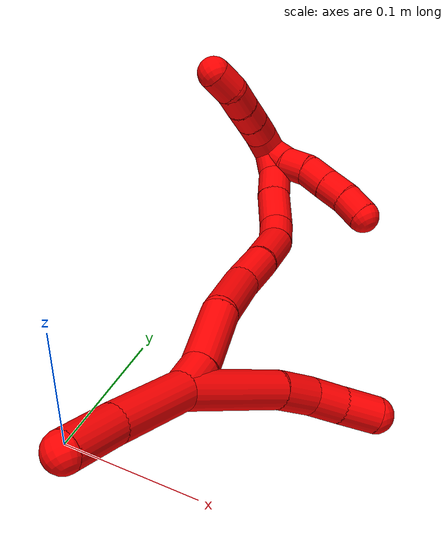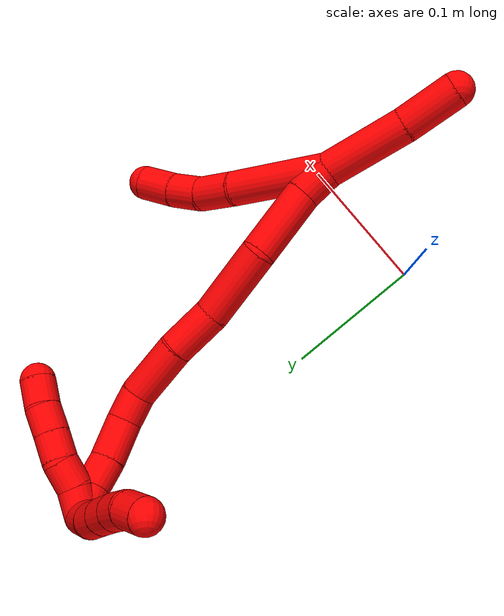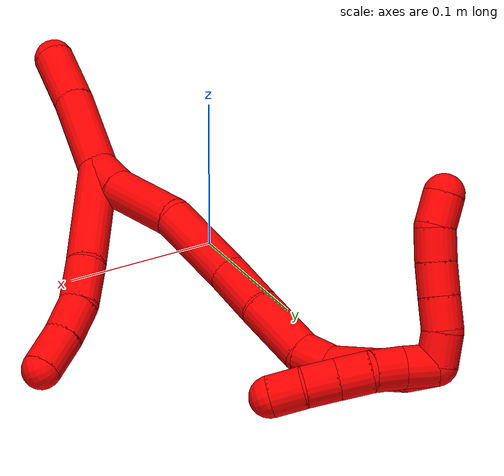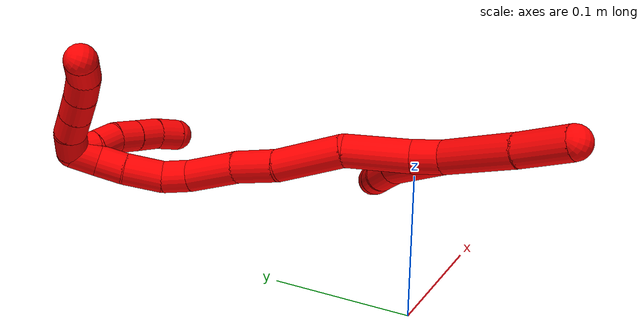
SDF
<sdf version="1.7">
 <world name="default">
  <model name="2">
   <static>0</static>
   <link name="2">
    <collision name="collision-cylinder-e_1_2_8">
     <pose>0.028579 0.020404 -0.007538 -1.92469 0.920203 -1.23668</pose>
     <geometry><cylinder><radius>0.0125</radius><length>0.07183</length></cylinder></geometry>
     <surface>
      <friction><ode><mu>1.16</mu><mu2>1.16</mu2><slip1>0</slip1><slip2>0</slip2></ode></friction>
      <contact><ode><kp>1e+06</kp><kd>1</kd><max_vel>0</max_vel><min_depth>0.001</min_depth></ode></contact>
     </surface>
    </collision>
    <visual name="visual-cylinder-e_1_2_8">
     <pose>0.028579 0.020404 -0.007538 -1.92469 0.920203 -1.23668</pose>
     <geometry><cylinder><radius>0.0125</radius><length>0.07183</length></cylinder></geometry>
     <material><ambient>1 0 0 1</ambient></material>
    </visual>
    <collision name="collision-cylinder-e_2_8_9">
     <pose>0.067063 0.049571 -0.019511 -2.0393 0.789745 -1.19163</pose>
     <geometry><cylinder><radius>0.0125</radius><length>0.027898</length></cylinder></geometry>
     <surface>
      <friction><ode><mu>1.16</mu><mu2>1.16</mu2><slip1>0</slip1><slip2>0</slip2></ode></friction>
      <contact><ode><kp>1e+06</kp><kd>1</kd><max_vel>0</max_vel><min_depth>0.001</min_depth></ode></contact>
     </surface>
    </collision>
    <visual name="visual-cylinder-e_2_8_9">
     <pose>0.067063 0.049571 -0.019511 -2.0393 0.789745 -1.19163</pose>
     <geometry><cylinder><radius>0.0125</radius><length>0.027898</length></cylinder></geometry>
     <material><ambient>1 0 0 1</ambient></material>
    </visual>
    <collision name="collision-cylinder-e_3_9_10">
     <pose>0.085729 0.06385 -0.029897 -2.39412 0.823559 -1.67826</pose>
     <geometry><cylinder><radius>0.0125</radius><length>0.023882</length></cylinder></geometry>
     <surface>
      <friction><ode><mu>1.16</mu><mu2>1.16</mu2><slip1>0</slip1><slip2>0</slip2></ode></friction>
      <contact><ode><kp>1e+06</kp><kd>1</kd><max_vel>0</max_vel><min_depth>0.001</min_depth></ode></contact>
     </surface>
    </collision>
    <visual name="visual-cylinder-e_3_9_10">
     <pose>0.085729 0.06385 -0.029897 -2.39412 0.823559 -1.67826</pose>
     <geometry><cylinder><radius>0.0125</radius><length>0.023882</length></cylinder></geometry>
     <material><ambient>1 0 0 1</ambient></material>
    </visual>
    <collision name="collision-cylinder-e_4_10_6">
     <pose>0.104514 0.074092 -0.04301 -2.5583 0.862954 -1.98597</pose>
     <geometry><cylinder><radius>0.0125</radius><length>0.026389</length></cylinder></geometry>
     <surface>
      <friction><ode><mu>1.16</mu><mu2>1.16</mu2><slip1>0</slip1><slip2>0</slip2></ode></friction>
      <contact><ode><kp>1e+06</kp><kd>1</kd><max_vel>0</max_vel><min_depth>0.001</min_depth></ode></contact>
     </surface>
    </collision>
    <visual name="visual-cylinder-e_4_10_6">
     <pose>0.104514 0.074092 -0.04301 -2.5583 0.862954 -1.98597</pose>
     <geometry><cylinder><radius>0.0125</radius><length>0.026389</length></cylinder></geometry>
     <material><ambient>1 0 0 1</ambient></material>
    </visual>
    <collision name="collision-cylinder-e_1_2_11">
     <pose>-0.022713 -0.01866 -0.005067 1.83596 -0.865538 -1.08695</pose>
     <geometry><cylinder><radius>0.0125</radius><length>0.059657</length></cylinder></geometry>
     <surface>
      <friction><ode><mu>1.16</mu><mu2>1.16</mu2><slip1>0</slip1><slip2>0</slip2></ode></friction>
      <contact><ode><kp>1e+06</kp><kd>1</kd><max_vel>0</max_vel><min_depth>0.001</min_depth></ode></contact>
     </surface>
    </collision>
    <visual name="visual-cylinder-e_1_2_11">
     <pose>-0.022713 -0.01866 -0.005067 1.83596 -0.865538 -1.08695</pose>
     <geometry><cylinder><radius>0.0125</radius><length>0.059657</length></cylinder></geometry>
     <material><ambient>1 0 0 1</ambient></material>
    </visual>
    <collision name="collision-cylinder-e_2_11_5">
     <pose>-0.059827 -0.050758 -0.014483 1.88378 -0.795124 -1.04706</pose>
     <geometry><cylinder><radius>0.0125</radius><length>0.040343</length></cylinder></geometry>
     <surface>
      <friction><ode><mu>1.16</mu><mu2>1.16</mu2><slip1>0</slip1><slip2>0</slip2></ode></friction>
      <contact><ode><kp>1e+06</kp><kd>1</kd><max_vel>0</max_vel><min_depth>0.001</min_depth></ode></contact>
     </surface>
    </collision>
    <visual name="visual-cylinder-e_2_11_5">
     <pose>-0.059827 -0.050758 -0.014483 1.88378 -0.795124 -1.04706</pose>
     <geometry><cylinder><radius>0.0125</radius><length>0.040343</length></cylinder></geometry>
     <material><ambient>1 0 0 1</ambient></material>
    </visual>
    <collision name="collision-cylinder-e_1_2_12">
     <pose>0.007996 0.006632 0.005694 -0.861333 0.740938 -0.353169</pose>
     <geometry><cylinder><radius>0.0125</radius><length>0.023693</length></cylinder></geometry>
     <surface>
      <friction><ode><mu>1.16</mu><mu2>1.16</mu2><slip1>0</slip1><slip2>0</slip2></ode></friction>
      <contact><ode><kp>1e+06</kp><kd>1</kd><max_vel>0</max_vel><min_depth>0.001</min_depth></ode></contact>
     </surface>
    </collision>
    <visual name="visual-cylinder-e_1_2_12">
     <pose>0.007996 0.006632 0.005694 -0.861333 0.740938 -0.353169</pose>
     <geometry><cylinder><radius>0.0125</radius><length>0.023693</length></cylinder></geometry>
     <material><ambient>1 0 0 1</ambient></material>
    </visual>
    <collision name="collision-cylinder-e_2_12_13">
     <pose>0.030624 0.0253 0.027964 -0.628043 0.620237 -0.207402</pose>
     <geometry><cylinder><radius>0.0125</radius><length>0.050346</length></cylinder></geometry>
     <surface>
      <friction><ode><mu>1.16</mu><mu2>1.16</mu2><slip1>0</slip1><slip2>0</slip2></ode></friction>
      <contact><ode><kp>1e+06</kp><kd>1</kd><max_vel>0</max_vel><min_depth>0.001</min_depth></ode></contact>
     </surface>
    </collision>
    <visual name="visual-cylinder-e_2_12_13">
     <pose>0.030624 0.0253 0.027964 -0.628043 0.620237 -0.207402</pose>
     <geometry><cylinder><radius>0.0125</radius><length>0.050346</length></cylinder></geometry>
     <material><ambient>1 0 0 1</ambient></material>
    </visual>
    <collision name="collision-cylinder-e_3_13_14">
     <pose>0.059147 0.056963 0.056874 -1.00974 0.539874 -0.303473</pose>
     <geometry><cylinder><radius>0.0125</radius><length>0.054052</length></cylinder></geometry>
     <surface>
      <friction><ode><mu>1.16</mu><mu2>1.16</mu2><slip1>0</slip1><slip2>0</slip2></ode></friction>
      <contact><ode><kp>1e+06</kp><kd>1</kd><max_vel>0</max_vel><min_depth>0.001</min_depth></ode></contact>
     </surface>
    </collision>
    <visual name="visual-cylinder-e_3_13_14">
     <pose>0.059147 0.056963 0.056874 -1.00974 0.539874 -0.303473</pose>
     <geometry><cylinder><radius>0.0125</radius><length>0.054052</length></cylinder></geometry>
     <material><ambient>1 0 0 1</ambient></material>
    </visual>
    <collision name="collision-cylinder-e_4_14_15">
     <pose>0.084625 0.087228 0.076926 -0.943092 0.722558 -0.38069</pose>
     <geometry><cylinder><radius>0.0125</radius><length>0.035038</length></cylinder></geometry>
     <surface>
      <friction><ode><mu>1.16</mu><mu2>1.16</mu2><slip1>0</slip1><slip2>0</slip2></ode></friction>
      <contact><ode><kp>1e+06</kp><kd>1</kd><max_vel>0</max_vel><min_depth>0.001</min_depth></ode></contact>
     </surface>
    </collision>
    <visual name="visual-cylinder-e_4_14_15">
     <pose>0.084625 0.087228 0.076926 -0.943092 0.722558 -0.38069</pose>
     <geometry><cylinder><radius>0.0125</radius><length>0.035038</length></cylinder></geometry>
     <material><ambient>1 0 0 1</ambient></material>
    </visual>
    <collision name="collision-cylinder-e_5_15_16">
     <pose>0.107904 0.112598 0.094088 -1.00078 0.589049 -0.328753</pose>
     <geometry><cylinder><radius>0.0125</radius><length>0.042096</length></cylinder></geometry>
     <surface>
      <friction><ode><mu>1.16</mu><mu2>1.16</mu2><slip1>0</slip1><slip2>0</slip2></ode></friction>
      <contact><ode><kp>1e+06</kp><kd>1</kd><max_vel>0</max_vel><min_depth>0.001</min_depth></ode></contact>
     </surface>
    </collision>
    <visual name="visual-cylinder-e_5_15_16">
     <pose>0.107904 0.112598 0.094088 -1.00078 0.589049 -0.328753</pose>
     <geometry><cylinder><radius>0.0125</radius><length>0.042096</length></cylinder></geometry>
     <material><ambient>1 0 0 1</ambient></material>
    </visual>
    <collision name="collision-cylinder-e_6_16_17">
     <pose>0.124157 0.133412 0.11122 -0.669144 0.435435 -0.153511</pose>
     <geometry><cylinder><radius>0.0125</radius><length>0.021621</length></cylinder></geometry>
     <surface>
      <friction><ode><mu>1.16</mu><mu2>1.16</mu2><slip1>0</slip1><slip2>0</slip2></ode></friction>
      <contact><ode><kp>1e+06</kp><kd>1</kd><max_vel>0</max_vel><min_depth>0.001</min_depth></ode></contact>
     </surface>
    </collision>
    <visual name="visual-cylinder-e_6_16_17">
     <pose>0.124157 0.133412 0.11122 -0.669144 0.435435 -0.153511</pose>
     <geometry><cylinder><radius>0.0125</radius><length>0.021621</length></cylinder></geometry>
     <material><ambient>1 0 0 1</ambient></material>
    </visual>
    <collision name="collision-cylinder-e_7_17_18">
     <pose>0.134511 0.143679 0.132379 -0.301328 0.389688 -0.059902</pose>
     <geometry><cylinder><radius>0.0125</radius><length>0.030499</length></cylinder></geometry>
     <surface>
      <friction><ode><mu>1.16</mu><mu2>1.16</mu2><slip1>0</slip1><slip2>0</slip2></ode></friction>
      <contact><ode><kp>1e+06</kp><kd>1</kd><max_vel>0</max_vel><min_depth>0.001</min_depth></ode></contact>
     </surface>
    </collision>
    <visual name="visual-cylinder-e_7_17_18">
     <pose>0.134511 0.143679 0.132379 -0.301328 0.389688 -0.059902</pose>
     <geometry><cylinder><radius>0.0125</radius><length>0.030499</length></cylinder></geometry>
     <material><ambient>1 0 0 1</ambient></material>
    </visual>
    <collision name="collision-cylinder-e_8_18_19">
     <pose>0.145523 0.150186 0.155131 -0.24501 0.499452 -0.062784</pose>
     <geometry><cylinder><radius>0.0125</radius><length>0.021795</length></cylinder></geometry>
     <surface>
      <friction><ode><mu>1.16</mu><mu2>1.16</mu2><slip1>0</slip1><slip2>0</slip2></ode></friction>
      <contact><ode><kp>1e+06</kp><kd>1</kd><max_vel>0</max_vel><min_depth>0.001</min_depth></ode></contact>
     </surface>
    </collision>
    <visual name="visual-cylinder-e_8_18_19">
     <pose>0.145523 0.150186 0.155131 -0.24501 0.499452 -0.062784</pose>
     <geometry><cylinder><radius>0.0125</radius><length>0.021795</length></cylinder></geometry>
     <material><ambient>1 0 0 1</ambient></material>
    </visual>
    <collision name="collision-cylinder-e_9_19_1">
     <pose>0.153586 0.153452 0.174401 -0.094417 0.276106 -0.013128</pose>
     <geometry><cylinder><radius>0.0125</radius><length>0.020859</length></cylinder></geometry>
     <surface>
      <friction><ode><mu>1.16</mu><mu2>1.16</mu2><slip1>0</slip1><slip2>0</slip2></ode></friction>
      <contact><ode><kp>1e+06</kp><kd>1</kd><max_vel>0</max_vel><min_depth>0.001</min_depth></ode></contact>
     </surface>
    </collision>
    <visual name="visual-cylinder-e_9_19_1">
     <pose>0.153586 0.153452 0.174401 -0.094417 0.276106 -0.013128</pose>
     <geometry><cylinder><radius>0.0125</radius><length>0.020859</length></cylinder></geometry>
     <material><ambient>1 0 0 1</ambient></material>
    </visual>
    <collision name="collision-cylinder-e_1_1_20">
     <pose>0.154113 0.146201 0.189629 1.00214 -0.233778 -0.128447</pose>
     <geometry><cylinder><radius>0.0125</radius><length>0.02</length></cylinder></geometry>
     <surface>
      <friction><ode><mu>1.16</mu><mu2>1.16</mu2><slip1>0</slip1><slip2>0</slip2></ode></friction>
      <contact><ode><kp>1e+06</kp><kd>1</kd><max_vel>0</max_vel><min_depth>0.001</min_depth></ode></contact>
     </surface>
    </collision>
    <visual name="visual-cylinder-e_1_1_20">
     <pose>0.154113 0.146201 0.189629 1.00214 -0.233778 -0.128447</pose>
     <geometry><cylinder><radius>0.0125</radius><length>0.02</length></cylinder></geometry>
     <material><ambient>1 0 0 1</ambient></material>
    </visual>
    <collision name="collision-cylinder-e_2_20_21">
     <pose>0.148747 0.128842 0.197467 1.29444 -0.309833 -0.234986</pose>
     <geometry><cylinder><radius>0.0125</radius><length>0.02</length></cylinder></geometry>
     <surface>
      <friction><ode><mu>1.16</mu><mu2>1.16</mu2><slip1>0</slip1><slip2>0</slip2></ode></friction>
      <contact><ode><kp>1e+06</kp><kd>1</kd><max_vel>0</max_vel><min_depth>0.001</min_depth></ode></contact>
     </surface>
    </collision>
    <visual name="visual-cylinder-e_2_20_21">
     <pose>0.148747 0.128842 0.197467 1.29444 -0.309833 -0.234986</pose>
     <geometry><cylinder><radius>0.0125</radius><length>0.02</length></cylinder></geometry>
     <material><ambient>1 0 0 1</ambient></material>
    </visual>
    <collision name="collision-cylinder-e_3_21_22">
     <pose>0.142553 0.110586 0.20279 1.2797 -0.319953 -0.239052</pose>
     <geometry><cylinder><radius>0.0125</radius><length>0.02</length></cylinder></geometry>
     <surface>
      <friction><ode><mu>1.16</mu><mu2>1.16</mu2><slip1>0</slip1><slip2>0</slip2></ode></friction>
      <contact><ode><kp>1e+06</kp><kd>1</kd><max_vel>0</max_vel><min_depth>0.001</min_depth></ode></contact>
     </surface>
    </collision>
    <visual name="visual-cylinder-e_3_21_22">
     <pose>0.142553 0.110586 0.20279 1.2797 -0.319953 -0.239052</pose>
     <geometry><cylinder><radius>0.0125</radius><length>0.02</length></cylinder></geometry>
     <material><ambient>1 0 0 1</ambient></material>
    </visual>
    <collision name="collision-cylinder-e_4_22_23">
     <pose>0.136412 0.09255 0.208836 1.21509 -0.304271 -0.212396</pose>
     <geometry><cylinder><radius>0.0125</radius><length>0.02</length></cylinder></geometry>
     <surface>
      <friction><ode><mu>1.16</mu><mu2>1.16</mu2><slip1>0</slip1><slip2>0</slip2></ode></friction>
      <contact><ode><kp>1e+06</kp><kd>1</kd><max_vel>0</max_vel><min_depth>0.001</min_depth></ode></contact>
     </surface>
    </collision>
    <visual name="visual-cylinder-e_4_22_23">
     <pose>0.136412 0.09255 0.208836 1.21509 -0.304271 -0.212396</pose>
     <geometry><cylinder><radius>0.0125</radius><length>0.02</length></cylinder></geometry>
     <material><ambient>1 0 0 1</ambient></material>
    </visual>
    <collision name="collision-cylinder-e_5_23_4">
     <pose>0.128873 0.076568 0.217621 0.91079 -0.47151 -0.23421</pose>
     <geometry><cylinder><radius>0.0125</radius><length>0.02</length></cylinder></geometry>
     <surface>
      <friction><ode><mu>1.16</mu><mu2>1.16</mu2><slip1>0</slip1><slip2>0</slip2></ode></friction>
      <contact><ode><kp>1e+06</kp><kd>1</kd><max_vel>0</max_vel><min_depth>0.001</min_depth></ode></contact>
     </surface>
    </collision>
    <visual name="visual-cylinder-e_5_23_4">
     <pose>0.128873 0.076568 0.217621 0.91079 -0.47151 -0.23421</pose>
     <geometry><cylinder><radius>0.0125</radius><length>0.02</length></cylinder></geometry>
     <material><ambient>1 0 0 1</ambient></material>
    </visual>
    <collision name="collision-cylinder-e_1_1_24">
     <pose>0.159372 0.150608 0.175618 2.73377 0.298726 1.25818</pose>
     <geometry><cylinder><radius>0.0125</radius><length>0.02</length></cylinder></geometry>
     <surface>
      <friction><ode><mu>1.16</mu><mu2>1.16</mu2><slip1>0</slip1><slip2>0</slip2></ode></friction>
      <contact><ode><kp>1e+06</kp><kd>1</kd><max_vel>0</max_vel><min_depth>0.001</min_depth></ode></contact>
     </surface>
    </collision>
    <visual name="visual-cylinder-e_1_1_24">
     <pose>0.159372 0.150608 0.175618 2.73377 0.298726 1.25818</pose>
     <geometry><cylinder><radius>0.0125</radius><length>0.02</length></cylinder></geometry>
     <material><ambient>1 0 0 1</ambient></material>
    </visual>
    <collision name="collision-cylinder-e_2_24_25">
     <pose>0.167421 0.143162 0.159062 2.70246 0.535878 1.77651</pose>
     <geometry><cylinder><radius>0.0125</radius><length>0.02</length></cylinder></geometry>
     <surface>
      <friction><ode><mu>1.16</mu><mu2>1.16</mu2><slip1>0</slip1><slip2>0</slip2></ode></friction>
      <contact><ode><kp>1e+06</kp><kd>1</kd><max_vel>0</max_vel><min_depth>0.001</min_depth></ode></contact>
     </surface>
    </collision>
    <visual name="visual-cylinder-e_2_24_25">
     <pose>0.167421 0.143162 0.159062 2.70246 0.535878 1.77651</pose>
     <geometry><cylinder><radius>0.0125</radius><length>0.02</length></cylinder></geometry>
     <material><ambient>1 0 0 1</ambient></material>
    </visual>
    <collision name="collision-cylinder-e_3_25_26">
     <pose>0.175607 0.13721 0.142047 2.89786 0.313082 1.82176</pose>
     <geometry><cylinder><radius>0.0125</radius><length>0.02</length></cylinder></geometry>
     <surface>
      <friction><ode><mu>1.16</mu><mu2>1.16</mu2><slip1>0</slip1><slip2>0</slip2></ode></friction>
      <contact><ode><kp>1e+06</kp><kd>1</kd><max_vel>0</max_vel><min_depth>0.001</min_depth></ode></contact>
     </surface>
    </collision>
    <visual name="visual-cylinder-e_3_25_26">
     <pose>0.175607 0.13721 0.142047 2.89786 0.313082 1.82176</pose>
     <geometry><cylinder><radius>0.0125</radius><length>0.02</length></cylinder></geometry>
     <material><ambient>1 0 0 1</ambient></material>
    </visual>
    <collision name="collision-cylinder-e_4_26_27">
     <pose>0.181988 0.132622 0.123657 2.89634 0.336429 1.88601</pose>
     <geometry><cylinder><radius>0.0125</radius><length>0.02</length></cylinder></geometry>
     <surface>
      <friction><ode><mu>1.16</mu><mu2>1.16</mu2><slip1>0</slip1><slip2>0</slip2></ode></friction>
      <contact><ode><kp>1e+06</kp><kd>1</kd><max_vel>0</max_vel><min_depth>0.001</min_depth></ode></contact>
     </surface>
    </collision>
    <visual name="visual-cylinder-e_4_26_27">
     <pose>0.181988 0.132622 0.123657 2.89634 0.336429 1.88601</pose>
     <geometry><cylinder><radius>0.0125</radius><length>0.02</length></cylinder></geometry>
     <material><ambient>1 0 0 1</ambient></material>
    </visual>
    <collision name="collision-cylinder-e_5_27_3">
     <pose>0.187225 0.128755 0.104817 2.98033 0.194805 1.75962</pose>
     <geometry><cylinder><radius>0.0125</radius><length>0.02</length></cylinder></geometry>
     <surface>
      <friction><ode><mu>1.16</mu><mu2>1.16</mu2><slip1>0</slip1><slip2>0</slip2></ode></friction>
      <contact><ode><kp>1e+06</kp><kd>1</kd><max_vel>0</max_vel><min_depth>0.001</min_depth></ode></contact>
     </surface>
    </collision>
    <visual name="visual-cylinder-e_5_27_3">
     <pose>0.187225 0.128755 0.104817 2.98033 0.194805 1.75962</pose>
     <geometry><cylinder><radius>0.0125</radius><length>0.02</length></cylinder></geometry>
     <material><ambient>1 0 0 1</ambient></material>
    </visual>
    <collision name="collision-sphere-3">
     <pose>0.189161 0.12718 0.095133 0 -0 0</pose>
     <geometry><sphere><radius>0.0125</radius></sphere></geometry>
     <surface>
      <friction><ode><mu>1.16</mu><mu2>1.16</mu2><slip1>0</slip1><slip2>0</slip2></ode></friction>
      <contact><ode><kp>1e+06</kp><kd>1</kd><max_vel>0</max_vel><min_depth>0.001</min_depth></ode></contact>
     </surface>
    </collision>
    <visual name="visual-sphere-3">
     <pose>0.189161 0.12718 0.095133 0 -0 0</pose>
     <geometry><sphere><radius>0.0125</radius></sphere></geometry>
     <material><ambient>1 0 0 1</ambient></material>
    </visual>
    <collision name="collision-sphere-27">
     <pose>0.185289 0.13033 0.1145 0 -0 0</pose>
     <geometry><sphere><radius>0.0125</radius></sphere></geometry>
     <surface>
      <friction><ode><mu>1.16</mu><mu2>1.16</mu2><slip1>0</slip1><slip2>0</slip2></ode></friction>
      <contact><ode><kp>1e+06</kp><kd>1</kd><max_vel>0</max_vel><min_depth>0.001</min_depth></ode></contact>
     </surface>
    </collision>
    <visual name="visual-sphere-27">
     <pose>0.185289 0.13033 0.1145 0 -0 0</pose>
     <geometry><sphere><radius>0.0125</radius></sphere></geometry>
     <material><ambient>1 0 0 1</ambient></material>
    </visual>
    <collision name="collision-sphere-26">
     <pose>0.178687 0.134914 0.132814 0 -0 0</pose>
     <geometry><sphere><radius>0.0125</radius></sphere></geometry>
     <surface>
      <friction><ode><mu>1.16</mu><mu2>1.16</mu2><slip1>0</slip1><slip2>0</slip2></ode></friction>
      <contact><ode><kp>1e+06</kp><kd>1</kd><max_vel>0</max_vel><min_depth>0.001</min_depth></ode></contact>
     </surface>
    </collision>
    <visual name="visual-sphere-26">
     <pose>0.178687 0.134914 0.132814 0 -0 0</pose>
     <geometry><sphere><radius>0.0125</radius></sphere></geometry>
     <material><ambient>1 0 0 1</ambient></material>
    </visual>
    <collision name="collision-sphere-25">
     <pose>0.172527 0.139506 0.15128 0 -0 0</pose>
     <geometry><sphere><radius>0.0125</radius></sphere></geometry>
     <surface>
      <friction><ode><mu>1.16</mu><mu2>1.16</mu2><slip1>0</slip1><slip2>0</slip2></ode></friction>
      <contact><ode><kp>1e+06</kp><kd>1</kd><max_vel>0</max_vel><min_depth>0.001</min_depth></ode></contact>
     </surface>
    </collision>
    <visual name="visual-sphere-25">
     <pose>0.172527 0.139506 0.15128 0 -0 0</pose>
     <geometry><sphere><radius>0.0125</radius></sphere></geometry>
     <material><ambient>1 0 0 1</ambient></material>
    </visual>
    <collision name="collision-sphere-24">
     <pose>0.162315 0.146817 0.166844 0 -0 0</pose>
     <geometry><sphere><radius>0.0125</radius></sphere></geometry>
     <surface>
      <friction><ode><mu>1.16</mu><mu2>1.16</mu2><slip1>0</slip1><slip2>0</slip2></ode></friction>
      <contact><ode><kp>1e+06</kp><kd>1</kd><max_vel>0</max_vel><min_depth>0.001</min_depth></ode></contact>
     </surface>
    </collision>
    <visual name="visual-sphere-24">
     <pose>0.162315 0.146817 0.166844 0 -0 0</pose>
     <geometry><sphere><radius>0.0125</radius></sphere></geometry>
     <material><ambient>1 0 0 1</ambient></material>
    </visual>
    <collision name="collision-sphere-4">
     <pose>0.124331 0.06953 0.223083 0 -0 0</pose>
     <geometry><sphere><radius>0.0125</radius></sphere></geometry>
     <surface>
      <friction><ode><mu>1.16</mu><mu2>1.16</mu2><slip1>0</slip1><slip2>0</slip2></ode></friction>
      <contact><ode><kp>1e+06</kp><kd>1</kd><max_vel>0</max_vel><min_depth>0.001</min_depth></ode></contact>
     </surface>
    </collision>
    <visual name="visual-sphere-4">
     <pose>0.124331 0.06953 0.223083 0 -0 0</pose>
     <geometry><sphere><radius>0.0125</radius></sphere></geometry>
     <material><ambient>1 0 0 1</ambient></material>
    </visual>
    <collision name="collision-sphere-23">
     <pose>0.133416 0.083606 0.212159 0 -0 0</pose>
     <geometry><sphere><radius>0.0125</radius></sphere></geometry>
     <surface>
      <friction><ode><mu>1.16</mu><mu2>1.16</mu2><slip1>0</slip1><slip2>0</slip2></ode></friction>
      <contact><ode><kp>1e+06</kp><kd>1</kd><max_vel>0</max_vel><min_depth>0.001</min_depth></ode></contact>
     </surface>
    </collision>
    <visual name="visual-sphere-23">
     <pose>0.133416 0.083606 0.212159 0 -0 0</pose>
     <geometry><sphere><radius>0.0125</radius></sphere></geometry>
     <material><ambient>1 0 0 1</ambient></material>
    </visual>
    <collision name="collision-sphere-22">
     <pose>0.139408 0.101493 0.205514 0 -0 0</pose>
     <geometry><sphere><radius>0.0125</radius></sphere></geometry>
     <surface>
      <friction><ode><mu>1.16</mu><mu2>1.16</mu2><slip1>0</slip1><slip2>0</slip2></ode></friction>
      <contact><ode><kp>1e+06</kp><kd>1</kd><max_vel>0</max_vel><min_depth>0.001</min_depth></ode></contact>
     </surface>
    </collision>
    <visual name="visual-sphere-22">
     <pose>0.139408 0.101493 0.205514 0 -0 0</pose>
     <geometry><sphere><radius>0.0125</radius></sphere></geometry>
     <material><ambient>1 0 0 1</ambient></material>
    </visual>
    <collision name="collision-sphere-21">
     <pose>0.145698 0.119679 0.200065 0 -0 0</pose>
     <geometry><sphere><radius>0.0125</radius></sphere></geometry>
     <surface>
      <friction><ode><mu>1.16</mu><mu2>1.16</mu2><slip1>0</slip1><slip2>0</slip2></ode></friction>
      <contact><ode><kp>1e+06</kp><kd>1</kd><max_vel>0</max_vel><min_depth>0.001</min_depth></ode></contact>
     </surface>
    </collision>
    <visual name="visual-sphere-21">
     <pose>0.145698 0.119679 0.200065 0 -0 0</pose>
     <geometry><sphere><radius>0.0125</radius></sphere></geometry>
     <material><ambient>1 0 0 1</ambient></material>
    </visual>
    <collision name="collision-sphere-20">
     <pose>0.151796 0.138004 0.194868 0 -0 0</pose>
     <geometry><sphere><radius>0.0125</radius></sphere></geometry>
     <surface>
      <friction><ode><mu>1.16</mu><mu2>1.16</mu2><slip1>0</slip1><slip2>0</slip2></ode></friction>
      <contact><ode><kp>1e+06</kp><kd>1</kd><max_vel>0</max_vel><min_depth>0.001</min_depth></ode></contact>
     </surface>
    </collision>
    <visual name="visual-sphere-20">
     <pose>0.151796 0.138004 0.194868 0 -0 0</pose>
     <geometry><sphere><radius>0.0125</radius></sphere></geometry>
     <material><ambient>1 0 0 1</ambient></material>
    </visual>
    <collision name="collision-sphere-11">
     <pose>-0.045425 -0.03732 -0.010134 0 -0 0</pose>
     <geometry><sphere><radius>0.0125</radius></sphere></geometry>
     <surface>
      <friction><ode><mu>1.16</mu><mu2>1.16</mu2><slip1>0</slip1><slip2>0</slip2></ode></friction>
      <contact><ode><kp>1e+06</kp><kd>1</kd><max_vel>0</max_vel><min_depth>0.001</min_depth></ode></contact>
     </surface>
    </collision>
    <visual name="visual-sphere-11">
     <pose>-0.045425 -0.03732 -0.010134 0 -0 0</pose>
     <geometry><sphere><radius>0.0125</radius></sphere></geometry>
     <material><ambient>1 0 0 1</ambient></material>
    </visual>
    <collision name="collision-sphere-6">
     <pose>0.114539 0.078817 -0.05017 0 -0 0</pose>
     <geometry><sphere><radius>0.0125</radius></sphere></geometry>
     <surface>
      <friction><ode><mu>1.16</mu><mu2>1.16</mu2><slip1>0</slip1><slip2>0</slip2></ode></friction>
      <contact><ode><kp>1e+06</kp><kd>1</kd><max_vel>0</max_vel><min_depth>0.001</min_depth></ode></contact>
     </surface>
    </collision>
    <visual name="visual-sphere-6">
     <pose>0.114539 0.078817 -0.05017 0 -0 0</pose>
     <geometry><sphere><radius>0.0125</radius></sphere></geometry>
     <material><ambient>1 0 0 1</ambient></material>
    </visual>
    <collision name="collision-sphere-10">
     <pose>0.094489 0.069367 -0.035849 0 -0 0</pose>
     <geometry><sphere><radius>0.0125</radius></sphere></geometry>
     <surface>
      <friction><ode><mu>1.16</mu><mu2>1.16</mu2><slip1>0</slip1><slip2>0</slip2></ode></friction>
      <contact><ode><kp>1e+06</kp><kd>1</kd><max_vel>0</max_vel><min_depth>0.001</min_depth></ode></contact>
     </surface>
    </collision>
    <visual name="visual-sphere-10">
     <pose>0.094489 0.069367 -0.035849 0 -0 0</pose>
     <geometry><sphere><radius>0.0125</radius></sphere></geometry>
     <material><ambient>1 0 0 1</ambient></material>
    </visual>
    <collision name="collision-sphere-9">
     <pose>0.07697 0.058333 -0.023946 0 -0 0</pose>
     <geometry><sphere><radius>0.0125</radius></sphere></geometry>
     <surface>
      <friction><ode><mu>1.16</mu><mu2>1.16</mu2><slip1>0</slip1><slip2>0</slip2></ode></friction>
      <contact><ode><kp>1e+06</kp><kd>1</kd><max_vel>0</max_vel><min_depth>0.001</min_depth></ode></contact>
     </surface>
    </collision>
    <visual name="visual-sphere-9">
     <pose>0.07697 0.058333 -0.023946 0 -0 0</pose>
     <geometry><sphere><radius>0.0125</radius></sphere></geometry>
     <material><ambient>1 0 0 1</ambient></material>
    </visual>
    <collision name="collision-sphere-2">
     <geometry><sphere><radius>0.0125</radius></sphere></geometry>
     <surface>
      <friction><ode><mu>1.16</mu><mu2>1.16</mu2><slip1>0</slip1><slip2>0</slip2></ode></friction>
      <contact><ode><kp>1e+06</kp><kd>1</kd><max_vel>0</max_vel><min_depth>0.001</min_depth></ode></contact>
     </surface>
    </collision>
    <visual name="visual-sphere-2">
     <geometry><sphere><radius>0.0125</radius></sphere></geometry>
     <material><ambient>1 0 0 1</ambient></material>
    </visual>
    <collision name="collision-sphere-19">
     <pose>0.150743 0.152506 0.164411 0 -0 0</pose>
     <geometry><sphere><radius>0.0125</radius></sphere></geometry>
     <surface>
      <friction><ode><mu>1.16</mu><mu2>1.16</mu2><slip1>0</slip1><slip2>0</slip2></ode></friction>
      <contact><ode><kp>1e+06</kp><kd>1</kd><max_vel>0</max_vel><min_depth>0.001</min_depth></ode></contact>
     </surface>
    </collision>
    <visual name="visual-sphere-19">
     <pose>0.150743 0.152506 0.164411 0 -0 0</pose>
     <geometry><sphere><radius>0.0125</radius></sphere></geometry>
     <material><ambient>1 0 0 1</ambient></material>
    </visual>
    <collision name="collision-sphere-8">
     <pose>0.057157 0.040809 -0.015077 0 -0 0</pose>
     <geometry><sphere><radius>0.0125</radius></sphere></geometry>
     <surface>
      <friction><ode><mu>1.16</mu><mu2>1.16</mu2><slip1>0</slip1><slip2>0</slip2></ode></friction>
      <contact><ode><kp>1e+06</kp><kd>1</kd><max_vel>0</max_vel><min_depth>0.001</min_depth></ode></contact>
     </surface>
    </collision>
    <visual name="visual-sphere-8">
     <pose>0.057157 0.040809 -0.015077 0 -0 0</pose>
     <geometry><sphere><radius>0.0125</radius></sphere></geometry>
     <material><ambient>1 0 0 1</ambient></material>
    </visual>
    <collision name="collision-sphere-5">
     <pose>-0.074228 -0.064196 -0.018832 0 -0 0</pose>
     <geometry><sphere><radius>0.0125</radius></sphere></geometry>
     <surface>
      <friction><ode><mu>1.16</mu><mu2>1.16</mu2><slip1>0</slip1><slip2>0</slip2></ode></friction>
      <contact><ode><kp>1e+06</kp><kd>1</kd><max_vel>0</max_vel><min_depth>0.001</min_depth></ode></contact>
     </surface>
    </collision>
    <visual name="visual-sphere-5">
     <pose>-0.074228 -0.064196 -0.018832 0 -0 0</pose>
     <geometry><sphere><radius>0.0125</radius></sphere></geometry>
     <material><ambient>1 0 0 1</ambient></material>
    </visual>
    <collision name="collision-sphere-12">
     <pose>0.015993 0.013264 0.011388 0 -0 0</pose>
     <geometry><sphere><radius>0.0125</radius></sphere></geometry>
     <surface>
      <friction><ode><mu>1.16</mu><mu2>1.16</mu2><slip1>0</slip1><slip2>0</slip2></ode></friction>
      <contact><ode><kp>1e+06</kp><kd>1</kd><max_vel>0</max_vel><min_depth>0.001</min_depth></ode></contact>
     </surface>
    </collision>
    <visual name="visual-sphere-12">
     <pose>0.015993 0.013264 0.011388 0 -0 0</pose>
     <geometry><sphere><radius>0.0125</radius></sphere></geometry>
     <material><ambient>1 0 0 1</ambient></material>
    </visual>
    <collision name="collision-sphere-13">
     <pose>0.045255 0.037335 0.044539 0 -0 0</pose>
     <geometry><sphere><radius>0.0125</radius></sphere></geometry>
     <surface>
      <friction><ode><mu>1.16</mu><mu2>1.16</mu2><slip1>0</slip1><slip2>0</slip2></ode></friction>
      <contact><ode><kp>1e+06</kp><kd>1</kd><max_vel>0</max_vel><min_depth>0.001</min_depth></ode></contact>
     </surface>
    </collision>
    <visual name="visual-sphere-13">
     <pose>0.045255 0.037335 0.044539 0 -0 0</pose>
     <geometry><sphere><radius>0.0125</radius></sphere></geometry>
     <material><ambient>1 0 0 1</ambient></material>
    </visual>
    <collision name="collision-sphere-14">
     <pose>0.073039 0.076592 0.069208 0 -0 0</pose>
     <geometry><sphere><radius>0.0125</radius></sphere></geometry>
     <surface>
      <friction><ode><mu>1.16</mu><mu2>1.16</mu2><slip1>0</slip1><slip2>0</slip2></ode></friction>
      <contact><ode><kp>1e+06</kp><kd>1</kd><max_vel>0</max_vel><min_depth>0.001</min_depth></ode></contact>
     </surface>
    </collision>
    <visual name="visual-sphere-14">
     <pose>0.073039 0.076592 0.069208 0 -0 0</pose>
     <geometry><sphere><radius>0.0125</radius></sphere></geometry>
     <material><ambient>1 0 0 1</ambient></material>
    </visual>
    <collision name="collision-sphere-15">
     <pose>0.09621 0.097864 0.084644 0 -0 0</pose>
     <geometry><sphere><radius>0.0125</radius></sphere></geometry>
     <surface>
      <friction><ode><mu>1.16</mu><mu2>1.16</mu2><slip1>0</slip1><slip2>0</slip2></ode></friction>
      <contact><ode><kp>1e+06</kp><kd>1</kd><max_vel>0</max_vel><min_depth>0.001</min_depth></ode></contact>
     </surface>
    </collision>
    <visual name="visual-sphere-15">
     <pose>0.09621 0.097864 0.084644 0 -0 0</pose>
     <geometry><sphere><radius>0.0125</radius></sphere></geometry>
     <material><ambient>1 0 0 1</ambient></material>
    </visual>
    <collision name="collision-sphere-16">
     <pose>0.119598 0.127332 0.103532 0 -0 0</pose>
     <geometry><sphere><radius>0.0125</radius></sphere></geometry>
     <surface>
      <friction><ode><mu>1.16</mu><mu2>1.16</mu2><slip1>0</slip1><slip2>0</slip2></ode></friction>
      <contact><ode><kp>1e+06</kp><kd>1</kd><max_vel>0</max_vel><min_depth>0.001</min_depth></ode></contact>
     </surface>
    </collision>
    <visual name="visual-sphere-16">
     <pose>0.119598 0.127332 0.103532 0 -0 0</pose>
     <geometry><sphere><radius>0.0125</radius></sphere></geometry>
     <material><ambient>1 0 0 1</ambient></material>
    </visual>
    <collision name="collision-sphere-17">
     <pose>0.128717 0.139492 0.118908 0 -0 0</pose>
     <geometry><sphere><radius>0.0125</radius></sphere></geometry>
     <surface>
      <friction><ode><mu>1.16</mu><mu2>1.16</mu2><slip1>0</slip1><slip2>0</slip2></ode></friction>
      <contact><ode><kp>1e+06</kp><kd>1</kd><max_vel>0</max_vel><min_depth>0.001</min_depth></ode></contact>
     </surface>
    </collision>
    <visual name="visual-sphere-17">
     <pose>0.128717 0.139492 0.118908 0 -0 0</pose>
     <geometry><sphere><radius>0.0125</radius></sphere></geometry>
     <material><ambient>1 0 0 1</ambient></material>
    </visual>
    <collision name="collision-sphere-18">
     <pose>0.140304 0.147865 0.14585 0 -0 0</pose>
     <geometry><sphere><radius>0.0125</radius></sphere></geometry>
     <surface>
      <friction><ode><mu>1.16</mu><mu2>1.16</mu2><slip1>0</slip1><slip2>0</slip2></ode></friction>
      <contact><ode><kp>1e+06</kp><kd>1</kd><max_vel>0</max_vel><min_depth>0.001</min_depth></ode></contact>
     </surface>
    </collision>
    <visual name="visual-sphere-18">
     <pose>0.140304 0.147865 0.14585 0 -0 0</pose>
     <geometry><sphere><radius>0.0125</radius></sphere></geometry>
     <material><ambient>1 0 0 1</ambient></material>
    </visual>
    <collision name="collision-sphere-1">
     <pose>0.156429 0.154398 0.184391 0 -0 0</pose>
     <geometry><sphere><radius>0.0125</radius></sphere></geometry>
     <surface>
      <friction><ode><mu>1.16</mu><mu2>1.16</mu2><slip1>0</slip1><slip2>0</slip2></ode></friction>
      <contact><ode><kp>1e+06</kp><kd>1</kd><max_vel>0</max_vel><min_depth>0.001</min_depth></ode></contact>
     </surface>
    </collision>
    <visual name="visual-sphere-1">
     <pose>0.156429 0.154398 0.184391 0 -0 0</pose>
     <geometry><sphere><radius>0.0125</radius></sphere></geometry>
     <material><ambient>1 0 0 1</ambient></material>
    </visual>
    <inertial>
     <pose>0.08294 0.072209 0.073791 0 -0 0</pose>
     <mass>0.75</mass>
     <inertia><ixx>3.2e-05</ixx><ixy>0</ixy><ixz>0</ixz><iyy>4.1e-05</iyy><iyz>0</iyz><izz>-6.1e-05</izz></inertia>
    </inertial>
   </link>
   <pose>0.085157 0.011751 0.081174 -1.09304 -0.190567 0.874037</pose>
  </model>
 </world>
</sdf>
